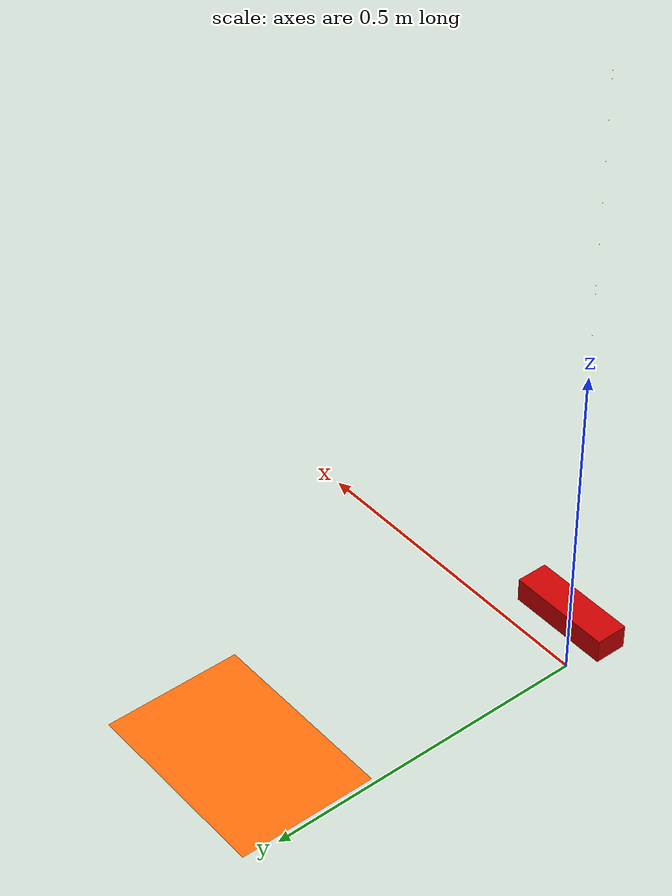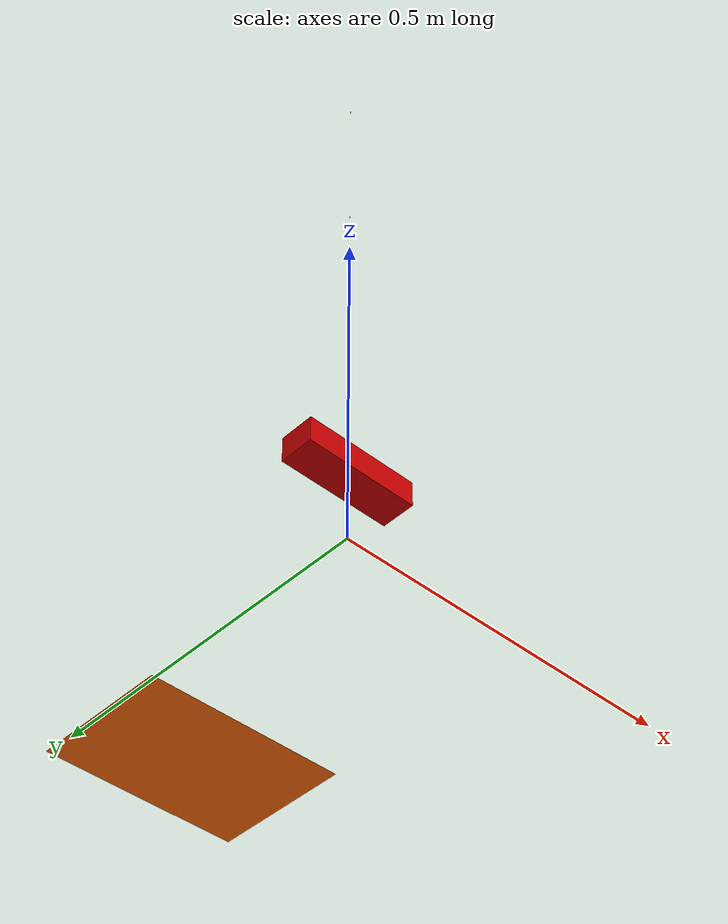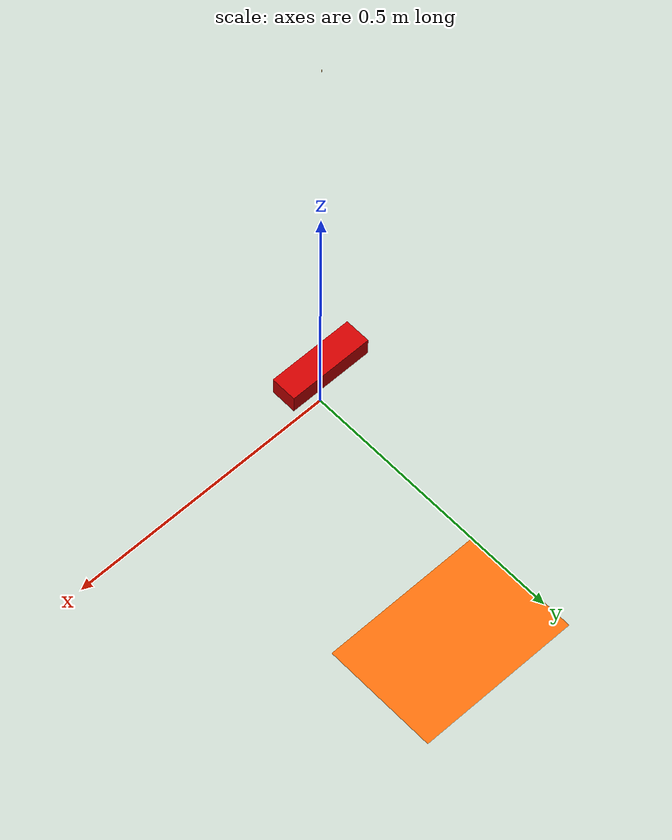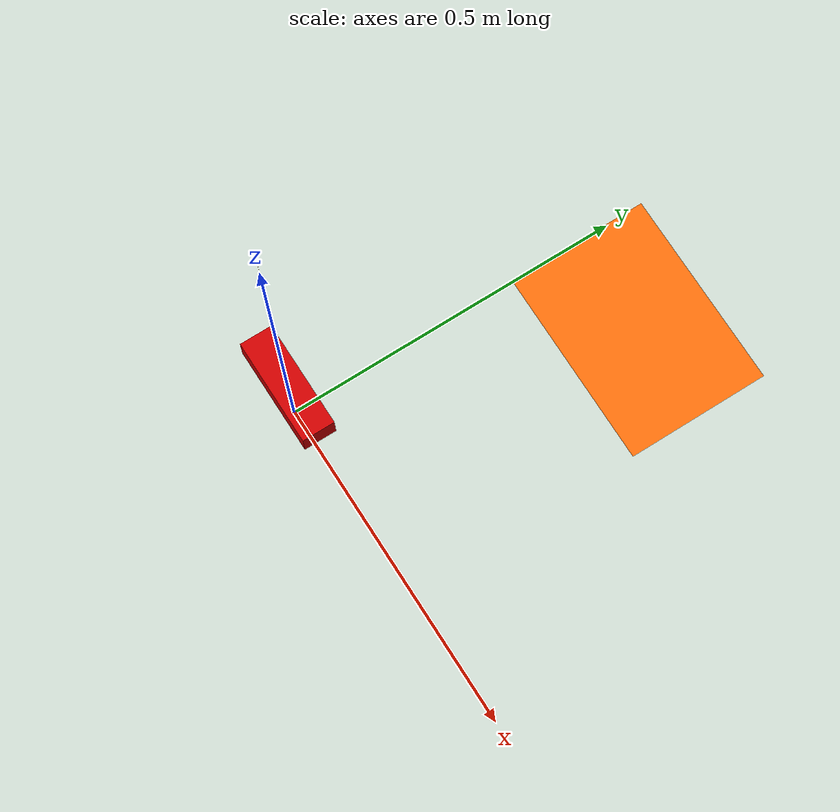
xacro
<?xml version="1.0"?>
<!-- Revolute-Revolute Manipulator -->
<robot name="rrbot" xmlns:xacro="http://www.ros.org/wiki/xacro">

  <!-- Constants for robot dimensions -->
  <xacro:property name="PI" value="3.1415926535897931"/>
  <xacro:property name="width" value="0.1" /> <!-- Square dimensions (widthxwidth) of beams -->
  <xacro:property name="height1" value="2" /> <!-- Link 1 -->
  <xacro:property name="height2" value="1" /> <!-- Link 2 -->
  <xacro:property name="height3" value="1" /> <!-- Link 3 -->
  <xacro:property name="camera_link" value="0.05" /> <!-- Size of square 'camera' box -->
  <xacro:property name="axel_offset" value="0.05" /> <!-- Space btw top of beam and the each joint -->

  <!-- Import all Gazebo-customization elements, including Gazebo colors -->
  <xacro:include filename="$(find clc_gtsam)/urdf/rrbot.gazebo" />
  <!-- Import Rviz colors -->
  <xacro:include filename="$(find clc_gtsam)/urdf/materials.xacro" />

  <!-- Used for fixing robot to Gazebo 'base_link' -->
  <link name="world"/>

  <joint name="joint" type="fixed">
    <parent link="world"/>
    <child link="rect"/>
    <origin xyz="0.15 0.45 0.00000" rpy="0 0 -0.61546"/>
    <axis xyz="0 0 1"/>
  </joint>

  <link name="rect">
    <visual>
      <origin xyz="0 0 0.01" rpy="0 0 0.61546"/>
      <geometry>
        <box size="0.297 0.210 0.000001"/>
      </geometry>
      <material name="orange"/>
    </visual>
    <collision>
      <origin xyz="0 0 0" rpy="0 0 0"/>
      <geometry>
        <box size="0.297 0.210 0.000001"/>
      </geometry>
    </collision>

    <inertial>
      <origin xyz="0 0 0" rpy="0 0 0"/>
      <mass value="1"/>
      <inertia
	  ixx="1.0" ixy="0.0" ixz="0.0"
          iyy="1.0" iyz="0.0"
	  izz="1.0"/>
    </inertial>
  </link>
  <joint name="joint1" type="continuous">
    <parent link="world"/>
    <child link="link1"/>
    <origin xyz="0 0 0.00001" rpy="0 0 0"/>
    <axis xyz="0 0 1"/>
    <dynamics damping="0.7"/>
  </joint>

  <!-- Base Link -->
  <link name="link1">

    <inertial>
      <origin xyz="0 0 0" rpy="0 0 0"/>
      <mass value="1"/>
      <inertia
	  ixx="1.0" ixy="0.0" ixz="0.0"
	  iyy="1.0" iyz="0.0"
	  izz="1.0"/>
    </inertial>
  </link>

  <joint name="joint2" type="continuous">
    <parent link="link1"/>
    <child link="link2"/>
    <origin xyz="0 0 0" rpy="0 0 0"/>
    <axis xyz="1 0 0"/>
    <dynamics damping="0.7"/>
  </joint>

  <link name="link3">
    <collision>
      <origin xyz="0 0 0.05" rpy="0 0 0"/>
      <geometry>
	<box size="0.001 0.001 0.1"/>
      </geometry>
    </collision>

    <visual>
      <origin xyz="0 0 0.5" rpy="0 0 0"/>
      <geometry>
	<box size="0.00001 0.00001 0.95"/>
      </geometry>
      <color rgba="0 0 0 0"/>
    </visual>

    <inertial>
      <origin xyz="0 0 0.05" rpy="0 0 0"/>
      <mass value="1"/>
      <inertia
	  ixx="1.0" ixy="0.0" ixz="0.0"
	  iyy="1.0" iyz="0.0"
	  izz="1.0"/>
    </inertial>
  </link>

  <link name="link2">
    <inertial>
      <origin xyz="0 0 0" rpy="0 0 0"/>
      <mass value="1"/>
      <inertia
	  ixx="1.0" ixy="0.0" ixz="0.0"
	  iyy="1.0" iyz="0.0"
	  izz="1.0"/>
    </inertial>
  </link>

  <joint name="joint3" type="prismatic">
    <axis xyz="0 0 1"/>
    <limit effort="1000" lower="-100" upper="100" velocity="10"/>
    <dynamics damping="0" friction="0"/>
    <origin xyz="0 0 0.001" rpy="0 0 0"/>
    <parent link="link2"/>
    <child link="link3"/>
  </joint>

    <joint name="camera_joint" type="fixed">
    <axis xyz="0 1 0" />
    <origin xyz="0 0 0.1" rpy="0 0 0"/>
    <parent link="link3"/>
    <child link="camera_link"/>
  </joint>

  <!-- Camera -->
  <link name="camera_link">
    <collision>
      <origin xyz="0 0 0" rpy="0 0 0"/>
      <geometry>
        <box size="0.157 0.0474 0.036"/>
      </geometry>
    </collision>

    <visual>
      <origin xyz="0 0 0" rpy="0 0 0"/>
      <geometry>
        <box size="0.157 0.0474 0.036"/>
      </geometry>
      <material name="red"/>
    </visual>

    <inertial>
      <mass value="1e-5" />
      <origin xyz="0 0 0" rpy="0 0 0"/>
      <inertia ixx="1e-6" ixy="0" ixz="0" iyy="1e-6" iyz="0" izz="1e-6" />
    </inertial>
  </link>

  <joint name="camera_link_frame_joint" type="fixed">
    <axis xyz="0 1 0" />
    <origin xyz="0 0 0" rpy="${-PI} 0 ${PI}"/>
    <parent link="camera_link"/>
    <child link="camera_frame"/>
  </joint>

  <link name="camera_frame"/>

  <transmission name="tran1">
    <type>transmission_interface/SimpleTransmission</type>
    <joint name="joint1">
      <hardwareInterface>EffortJointInterface</hardwareInterface>
    </joint>
    <actuator name="motor1">
      <hardwareInterface>EffortJointInterface</hardwareInterface>
      <mechanicalReduction>1</mechanicalReduction>
    </actuator>
  </transmission>

  <transmission name="tran2">
    <type>transmission_interface/SimpleTransmission</type>
    <joint name="joint2">
      <hardwareInterface>EffortJointInterface</hardwareInterface>
    </joint>
    <actuator name="motor2">
      <hardwareInterface>EffortJointInterface</hardwareInterface>
      <mechanicalReduction>1</mechanicalReduction>
    </actuator>
  </transmission>

    <transmission name="joint3_tran3">
    <type>transmission_interface/SimpleTransmission</type>
    <joint name="joint3">
      <hardwareInterface>EffortJointInterface</hardwareInterface>
    </joint>
    <actuator name="joint3_motor3">
      <hardwareInterface>EffortJointInterface</hardwareInterface>
      <mechanicalReduction>1</mechanicalReduction>
    </actuator>
  </transmission>

</robot>

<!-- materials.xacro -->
<robot>

  <material name="black">
    <color rgba="0.0 0.0 0.0 1.0"/>
  </material>

  <material name="blue">
    <color rgba="0.0 0.0 0.8 1.0"/>
  </material>

  <material name="green">
    <color rgba="0.0 0.8 0.0 1.0"/>
  </material>

  <material name="grey">
    <color rgba="0.2 0.2 0.2 1.0"/>
  </material>

  <material name="orange">
    <color rgba="${255/255} ${108/255} ${10/255} 1.0"/>
  </material>

  <material name="brown">
    <color rgba="${222/255} ${207/255} ${195/255} 1.0"/>
  </material>

  <material name="red">
    <color rgba="0.8 0.0 0.0 1.0"/>
  </material>

  <material name="white">
    <color rgba="1.0 1.0 1.0 1.0"/>
  </material>
  <material name="transparent">
    <color rgba="0.0 0.0 0.0 0.0"/>
  </material>

</robot>
